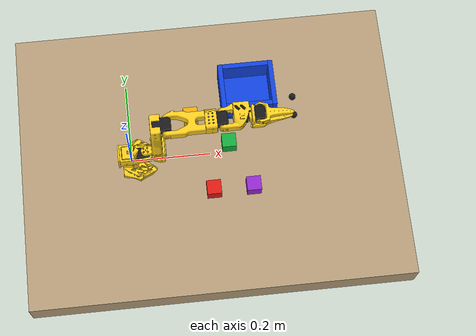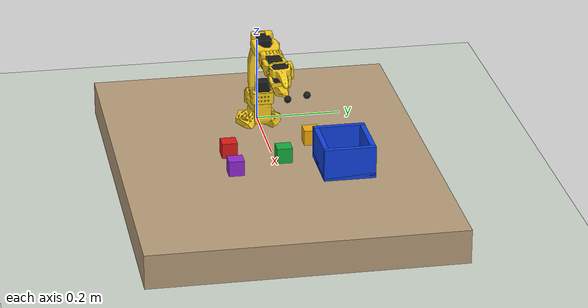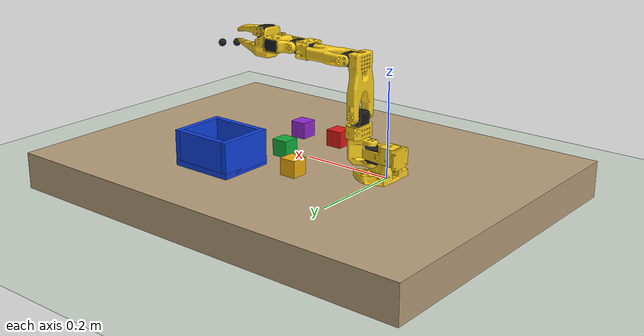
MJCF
<mujoco model="physical_ai_so101_playground">
  <include file="so101_new_calib.xml"/>

  <option timestep="0.002" gravity="0 0 -9.81" integrator="implicitfast"/>
  <visual>
    <headlight diffuse="0.65 0.65 0.65" ambient="0.28 0.28 0.28" specular="0.1 0.1 0.1"/>
    <global offwidth="640" offheight="480"/>
    <quality shadowsize="2048"/>
  </visual>

  <asset>
    <material name="table_material" rgba="0.72 0.62 0.48 1"/>
    <material name="red_material" rgba="0.88 0.10 0.08 1"/>
    <material name="green_material" rgba="0.08 0.68 0.24 1"/>
    <material name="yellow_material" rgba="0.95 0.68 0.04 1"/>
    <material name="purple_material" rgba="0.58 0.16 0.82 1"/>
    <material name="blue_material" rgba="0.06 0.26 0.88 1"/>
  </asset>

  <worldbody>
    <light pos="0 0 1.4" diffuse="0.9 0.9 0.9"/>
    <camera name="scene_camera" pos="0.55 -0.55 0.50" xyaxes="0.858 0.515 0 -0.283 0.472 0.840" fovy="52"/>
    <geom name="floor" type="plane" pos="0 0 -0.085" size="2 2 0.05" rgba="0.80 0.84 0.80 1"/>
    <body name="table" pos="0.20 0 -0.04">
      <geom type="box" size="0.48 0.36 0.04" material="table_material"/>
    </body>

    <body name="red_cube" pos="0.20 -0.10 0.018">
      <freejoint name="red_cube_free"/>
      <geom name="red_cube_geom" type="box" size="0.018 0.018 0.018" material="red_material" mass="0.025" friction="1.4 0.02 0.002" solref="0.004 1"/>
    </body>
    <body name="green_cube" pos="0.25 0.02 0.018">
      <freejoint name="green_cube_free"/>
      <geom name="green_cube_geom" type="box" size="0.018 0.018 0.018" material="green_material" mass="0.025" friction="1.4 0.02 0.002" solref="0.004 1"/>
    </body>
    <body name="yellow_cube" pos="0.16 0.10 0.018">
      <freejoint name="yellow_cube_free"/>
      <geom name="yellow_cube_geom" type="box" size="0.018 0.018 0.018" material="yellow_material" mass="0.025" friction="1.4 0.02 0.002" solref="0.004 1"/>
    </body>
    <body name="purple_cube" pos="0.30 -0.10 0.018">
      <freejoint name="purple_cube_free"/>
      <geom name="purple_cube_geom" type="box" size="0.018 0.018 0.018" material="purple_material" mass="0.025" friction="1.4 0.02 0.002" solref="0.004 1"/>
    </body>

    <body name="blue_box" mocap="true" pos="0.31 0.15 0.006">
      <geom type="box" size="0.07 0.06 0.006" material="blue_material"/>
      <geom type="box" pos="0.064 0 0.035" size="0.006 0.06 0.035" material="blue_material"/>
      <geom type="box" pos="-0.064 0 0.035" size="0.006 0.06 0.035" material="blue_material"/>
      <geom type="box" pos="0 0.054 0.035" size="0.058 0.006 0.035" material="blue_material"/>
      <geom type="box" pos="0 -0.054 0.035" size="0.058 0.006 0.035" material="blue_material"/>
    </body>
  </worldbody>
</mujoco>

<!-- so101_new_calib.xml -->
<!-- Generated using onshape-to-robot -->
<!-- Modified by physical-ai-playground: added a wrist RGB camera only. -->
<!-- Onshape https://cad.onshape.com/documents/7715cc284bb430fe6dab4ffd/w/4fd0791b683777b02f8d975a/e/826c553ede3b7592eb9ca800 -->
<mujoco model="so101_new_calib">
  <compiler angle="radian" meshdir="assets" autolimits="true"/>
  <default>
    <default class="so101_new_calib">
      <joint damping="1" frictionloss="0.1" armature="0.005"/>
      <position kp="50"/>
      <default class="visual">
        <geom type="mesh" contype="0" conaffinity="0" group="2"/>
      </default>
      <default class="collision">
        <geom group="3"/>
      </default>
    </default>
  </default>
  <!-- Additional joints_properties.xml -->
  <default>
    <default class="sts3215">
      <geom contype="0" conaffinity="0"/>
      <joint damping="0.60" frictionloss="0.052" armature="0.028"/>
      <position kp="998.22" kv="2.731" forcerange="-2.94 2.94"/>
    </default>
    <default class="backlash">
      <!-- +/- 0.5° of backlash -->
      <joint damping="0.01" frictionloss="0" armature="0.01" limited="true" range="-0.008726646259971648 0.008726646259971648"/>
    </default>
  </default>
  <worldbody>
    <!-- Link base -->
    <body name="base" pos="0 0 0" quat="1 0 0 0" childclass="so101_new_calib">
      <inertial pos="0.0137179 -5.19711e-05 0.0334843" mass="0.147" fullinertia="0.000114686 0.000136117 0.000130364 -4.59787e-07 4.97151e-06 9.75275e-08"/>
      <!-- Part base_motor_holder_so101_v1 -->
      <geom type="mesh" class="visual" pos="-0.00636471 -9.94414e-05 -0.0024" quat="0.5 0.5 0.5 0.5" mesh="base_motor_holder_so101_v1" material="base_motor_holder_so101_v1_material"/>
      <!-- Part base_so101_v2 -->
      <geom type="mesh" class="visual" pos="-0.00636471 -8.97657e-09 -0.0024" quat="0.5 0.5 0.5 0.5" mesh="base_so101_v2" material="base_so101_v2_material"/>
      <!-- Part sts3215_03a_v1 -->
      <geom type="mesh" class="visual" pos="0.0263353 -8.97657e-09 0.0437" quat="1 -2.85511e-16 -9.64433e-17 6.12908e-16" mesh="sts3215_03a_v1" material="sts3215_03a_v1_material"/>
      <!-- Part waveshare_mounting_plate_so101_v2 -->
      <geom type="mesh" class="visual" pos="-0.0309827 -0.000199441 0.0474" quat="0.5 0.5 0.5 0.5" mesh="waveshare_mounting_plate_so101_v2" material="waveshare_mounting_plate_so101_v2_material"/>
      <!-- Frame baseframe -->
      <site group="3" name="baseframe" pos="8.67362e-19 9.55596e-18 3.46945e-18" quat="1 -8.17396e-19 3.78392e-17 2.22045e-16"/>
      <!-- Link shoulder -->
      <body name="shoulder" pos="0.0388353 -8.97657e-09 0.0624" quat="3.56167e-16 1.22818e-15 -1 -4.14635e-16">
        <!-- Joint from base to shoulder -->
        <joint axis="0 0 1" name="shoulder_pan" type="hinge" range="-1.9198621771937616 1.9198621771937634" class="sts3215"/>
        <inertial pos="-0.0307604 -1.66727e-05 -0.0252713" mass="0.100006" fullinertia="8.3759e-05 8.10403e-05 2.39783e-05 7.55525e-08 -1.16342e-06 1.54663e-07"/>
        <!-- Part sts3215_03a_v1_2 -->
        <geom type="mesh" class="visual" pos="-0.0303992 0.000422241 -0.0417" quat="0.5 0.5 0.5 -0.5" mesh="sts3215_03a_v1" material="sts3215_03a_v1_material"/>
        <geom type="mesh" class="collision" pos="-0.0303992 0.000422241 -0.0417" quat="0.5 0.5 0.5 -0.5" mesh="sts3215_03a_v1" material="sts3215_03a_v1_material"/>
        <!-- Part motor_holder_so101_base_v1 -->
        <geom type="mesh" class="visual" pos="-0.0675992 -0.000177759 0.0158499" quat="0.5 0.5 -0.5 0.5" mesh="motor_holder_so101_base_v1" material="motor_holder_so101_base_v1_material"/>
        <geom type="mesh" class="collision" pos="-0.0675992 -0.000177759 0.0158499" quat="0.5 0.5 -0.5 0.5" mesh="motor_holder_so101_base_v1" material="motor_holder_so101_base_v1_material"/>
        <!-- Part rotation_pitch_so101_v1 -->
        <geom type="mesh" class="visual" pos="0.0122008 2.22413e-05 0.0464" quat="0.707107 -0.707107 -0 8.3163e-34" mesh="rotation_pitch_so101_v1" material="rotation_pitch_so101_v1_material"/>
        <geom type="mesh" class="collision" pos="0.0122008 2.22413e-05 0.0464" quat="0.707107 -0.707107 -0 8.3163e-34" mesh="rotation_pitch_so101_v1" material="rotation_pitch_so101_v1_material"/>
        <!-- Link upper_arm -->
        <body name="upper_arm" pos="-0.0303992 -0.0182778 -0.0542" quat="0.5 -0.5 -0.5 -0.5">
          <!-- Joint from shoulder to upper_arm -->
          <joint axis="0 0 1" name="shoulder_lift" type="hinge" range="-1.7453292519943224 1.7453292519943366" class="sts3215"/>
          <inertial pos="-0.0898471 -0.00838224 0.0184089" mass="0.103" fullinertia="4.08002e-05 0.000147318 0.000142487 -1.97819e-05 -4.03016e-08 8.97326e-09"/>
          <!-- Part sts3215_03a_v1_3 -->
          <geom type="mesh" class="visual" pos="-0.11257 -0.0155 0.0187" quat="4.56308e-16 -0.707107 0.707107 -1.37383e-16" mesh="sts3215_03a_v1" material="sts3215_03a_v1_material"/>
          <geom type="mesh" class="collision" pos="-0.11257 -0.0155 0.0187" quat="4.56308e-16 -0.707107 0.707107 -1.37383e-16" mesh="sts3215_03a_v1" material="sts3215_03a_v1_material"/>
          <!-- Part upper_arm_so101_v1 -->
          <geom type="mesh" class="visual" pos="-0.065085 0.012 0.0182" quat="0 1 0 0" mesh="upper_arm_so101_v1" material="upper_arm_so101_v1_material"/>
          <geom type="mesh" class="collision" pos="-0.065085 0.012 0.0182" quat="0 1 0 0" mesh="upper_arm_so101_v1" material="upper_arm_so101_v1_material"/>
          <!-- Link lower_arm -->
          <body name="lower_arm" pos="-0.11257 -0.028 1.73763e-16" quat="0.707107 -5.98613e-17 -2.58051e-17 0.707107">
            <!-- Joint from upper_arm to lower_arm -->
            <!-- Note: 5-degree calibration offset applied to joint range -->
            <joint axis="0 0 1" name="elbow_flex" type="hinge" range="-1.69 1.69" class="sts3215"/>
            <inertial pos="-0.0980701 0.00324376 0.0182831" mass="0.104" fullinertia="2.87438e-05 0.000159844 0.00014529 7.41152e-06 1.26409e-06 -4.90188e-08"/>
            <!-- Part under_arm_so101_v1 -->
            <geom type="mesh" class="visual" pos="-0.0648499 -0.032 0.0182" quat="0 1 0 0" mesh="under_arm_so101_v1" material="under_arm_so101_v1_material"/>
            <geom type="mesh" class="collision" pos="-0.0648499 -0.032 0.0182" quat="0 1 0 0" mesh="under_arm_so101_v1" material="under_arm_so101_v1_material"/>
            <!-- Part motor_holder_so101_wrist_v1 -->
            <geom type="mesh" class="visual" pos="-0.0648499 -0.032 0.018" quat="3.92687e-16 -1 -1.9186e-15 -6.38378e-16" mesh="motor_holder_so101_wrist_v1" material="motor_holder_so101_wrist_v1_material"/>
            <geom type="mesh" class="collision" pos="-0.0648499 -0.032 0.018" quat="3.92687e-16 -1 -1.9186e-15 -6.38378e-16" mesh="motor_holder_so101_wrist_v1" material="motor_holder_so101_wrist_v1_material"/>
            <!-- Part sts3215_03a_v1_4 -->
            <geom type="mesh" class="visual" pos="-0.1224 0.0052 0.0187" quat="7.21645e-16 1.56949e-15 1 -3.33067e-16" mesh="sts3215_03a_v1" material="sts3215_03a_v1_material"/>
            <geom type="mesh" class="collision" pos="-0.1224 0.0052 0.0187" quat="7.21645e-16 1.56949e-15 1 -3.33067e-16" mesh="sts3215_03a_v1" material="sts3215_03a_v1_material"/>
            <!-- Link wrist -->
            <body name="wrist" pos="-0.1349 0.0052 3.62355e-17" quat="0.707107 9.58722e-16 -7.51313e-16 -0.707107">
              <!-- Joint from lower_arm to wrist -->
              <joint axis="0 0 1" name="wrist_flex" type="hinge" range="-1.6580628494556928 1.6580627293335335" class="sts3215"/>
              <inertial pos="-0.000103312 -0.0386143 0.0281156" mass="0.079" fullinertia="3.68263e-05 2.5391e-05 2.1e-05 1.7893e-08 -5.28128e-08 3.6412e-06"/>
              <!-- Part sts3215_03a_no_horn_v1 -->
              <geom type="mesh" class="visual" pos="8.32667e-17 -0.0424 0.0306" quat="0.5 0.5 0.5 -0.5" mesh="sts3215_03a_no_horn_v1" material="sts3215_03a_no_horn_v1_material"/>
              <geom type="mesh" class="collision" pos="8.32667e-17 -0.0424 0.0306" quat="0.5 0.5 0.5 -0.5" mesh="sts3215_03a_no_horn_v1" material="sts3215_03a_no_horn_v1_material"/>
              <!-- Part wrist_roll_pitch_so101_v2 -->
              <geom type="mesh" class="visual" pos="0 -0.028 0.0181" quat="0.5 -0.5 -0.5 -0.5" mesh="wrist_roll_pitch_so101_v2" material="wrist_roll_pitch_so101_v2_material"/>
              <geom type="mesh" class="collision" pos="0 -0.028 0.0181" quat="0.5 -0.5 -0.5 -0.5" mesh="wrist_roll_pitch_so101_v2" material="wrist_roll_pitch_so101_v2_material"/>
              <!-- Link gripper -->
              <body name="gripper" pos="5.55112e-17 -0.0611 0.0181" quat="0.0172091 -0.0172091 0.706897 0.706897">
                <!-- Joint from wrist to gripper -->
                <joint axis="0 0 1" name="wrist_roll" type="hinge" range="-2.7438472969992493 2.841206309382605" class="sts3215"/>
                <inertial pos="0.000213627 0.000245138 -0.025187" mass="0.087" fullinertia="2.75087e-05 4.33657e-05 3.45059e-05 -3.35241e-07 -5.7352e-06 -5.17847e-08"/>
                <!-- Part sts3215_03a_v1_5 -->
                <geom type="mesh" class="visual" pos="0.0077 0.0001 -0.0234" quat="0.707107 -0.707107 1.66015e-15 6.45094e-15" mesh="sts3215_03a_v1" material="sts3215_03a_v1_material"/>
                <geom type="mesh" class="collision" pos="0.0077 0.0001 -0.0234" quat="0.707107 -0.707107 1.66015e-15 6.45094e-15" mesh="sts3215_03a_v1" material="sts3215_03a_v1_material"/>
                <!-- Part wrist_roll_follower_so101_v1 -->
                <geom type="mesh" class="visual" pos="8.32667e-17 -0.000218214 0.000949706" quat="0 1 0 0" mesh="wrist_roll_follower_so101_v1" material="wrist_roll_follower_so101_v1_material"/>
                <geom type="mesh" class="collision" pos="8.32667e-17 -0.000218214 0.000949706" quat="0 1 0 0" mesh="wrist_roll_follower_so101_v1" material="wrist_roll_follower_so101_v1_material" friction="2.5 0.05 0.005" solref="0.003 1"/>
                <!-- Frame gripperframe -->
                <site group="3" name="gripperframe" pos="-0.0079 -0.000218121 -0.0981274" quat="0.707107 -0 0.707107 -2.37788e-17"/>
                <site group="3" name="grasp_site" pos="-0.0079 0.0095 -0.0981274" quat="0.707107 -0 0.707107 -2.37788e-17"/>
                <geom name="fixed_jaw_pad" type="sphere" pos="-0.01720 0.00090 -0.10632" size="0.008" mass="0.001" condim="6" friction="6.0 0.15 0.02" solref="0.002 1" rgba="0.12 0.12 0.12 1"/>
                <camera name="wrist_camera" pos="-0.0079 -0.000218121 -0.061" quat="1 0 0 0" fovy="72"/>
                <!-- Link moving_jaw_so101_v1 -->
                <body name="moving_jaw_so101_v1" pos="0.0202 0.0188 -0.0234" quat="0.707107 0.707107 -1.85362e-08 1.85362e-08">
                  <!-- Joint from gripper to moving_jaw_so101_v1 -->
                  <joint axis="0 0 1" name="gripper" type="hinge" range="-0.17453297762778586 1.7453291995659765" class="sts3215"/>
                  <inertial pos="-0.00157495 -0.0300244 0.0192755" mass="0.012" fullinertia="6.61427e-06 1.89032e-06 5.28738e-06 -3.19807e-07 -5.90717e-09 -1.09945e-07"/>
                  <!-- Part moving_jaw_so101_v1 -->
                  <geom type="mesh" class="visual" pos="-5.55112e-17 -5.55112e-17 0.0189" quat="1 -0 3.00524e-16 -2.00834e-17" mesh="moving_jaw_so101_v1" material="moving_jaw_so101_v1_material"/>
                  <geom type="mesh" class="collision" pos="-5.55112e-17 -5.55112e-17 0.0189" quat="1 -0 3.00524e-16 -2.00834e-17" mesh="moving_jaw_so101_v1" material="moving_jaw_so101_v1_material" friction="2.5 0.05 0.005" solref="0.003 1"/>
                  <geom name="moving_jaw_pad" type="sphere" pos="-0.03232 -0.08399 -0.02571" size="0.008" mass="0.001" condim="6" friction="6.0 0.15 0.02" solref="0.002 1" rgba="0.12 0.12 0.12 1"/>
                </body>
              </body>
            </body>
          </body>
        </body>
      </body>
    </body>
  </worldbody>
  <asset>
    <mesh file="waveshare_mounting_plate_so101_v2.stl"/>
    <mesh file="sts3215_03a_v1.stl"/>
    <mesh file="motor_holder_so101_base_v1.stl"/>
    <mesh file="wrist_roll_follower_so101_v1.stl"/>
    <mesh file="moving_jaw_so101_v1.stl"/>
    <mesh file="base_motor_holder_so101_v1.stl"/>
    <mesh file="upper_arm_so101_v1.stl"/>
    <mesh file="wrist_roll_pitch_so101_v2.stl"/>
    <mesh file="under_arm_so101_v1.stl"/>
    <mesh file="rotation_pitch_so101_v1.stl"/>
    <mesh file="motor_holder_so101_wrist_v1.stl"/>
    <mesh file="sts3215_03a_no_horn_v1.stl"/>
    <mesh file="base_so101_v2.stl"/>
    <material name="base_motor_holder_so101_v1_material" rgba="1 0.82 0.12 1"/>
    <material name="base_so101_v2_material" rgba="1 0.82 0.12 1"/>
    <material name="sts3215_03a_v1_material" rgba="0.1 0.1 0.1 1"/>
    <material name="waveshare_mounting_plate_so101_v2_material" rgba="1 0.82 0.12 1"/>
    <material name="motor_holder_so101_base_v1_material" rgba="1 0.82 0.12 1"/>
    <material name="rotation_pitch_so101_v1_material" rgba="1 0.82 0.12 1"/>
    <material name="upper_arm_so101_v1_material" rgba="1 0.82 0.12 1"/>
    <material name="under_arm_so101_v1_material" rgba="1 0.82 0.12 1"/>
    <material name="motor_holder_so101_wrist_v1_material" rgba="1 0.82 0.12 1"/>
    <material name="sts3215_03a_no_horn_v1_material" rgba="0.1 0.1 0.1 1.0"/>
    <material name="wrist_roll_pitch_so101_v2_material" rgba="1 0.82 0.12 1"/>
    <material name="wrist_roll_follower_so101_v1_material" rgba="1 0.82 0.12 1"/>
    <material name="moving_jaw_so101_v1_material" rgba="1 0.82 0.12 1"/>
  </asset>
  <actuator>
    <position class="sts3215" name="shoulder_pan" joint="shoulder_pan" forcerange="-3.35 3.35" ctrlrange="-1.91986 1.91986"/>
    <position class="sts3215" name="shoulder_lift" joint="shoulder_lift" forcerange="-3.35 3.35" ctrlrange="-1.74533 1.74533"/>
    <position class="sts3215" name="elbow_flex" joint="elbow_flex" forcerange="-3.35 3.35" ctrlrange="-1.69 1.69"/>
    <position class="sts3215" name="wrist_flex" joint="wrist_flex" forcerange="-3.35 3.35" ctrlrange="-1.65806 1.65806"/>
    <position class="sts3215" name="wrist_roll" joint="wrist_roll" forcerange="-3.35 3.35" ctrlrange="-2.74385 2.84121"/>
    <position class="sts3215" name="gripper" joint="gripper" forcerange="-3.35 3.35" ctrlrange="-0.17453 1.74533"/>
  </actuator>
  <equality/>
</mujoco>
